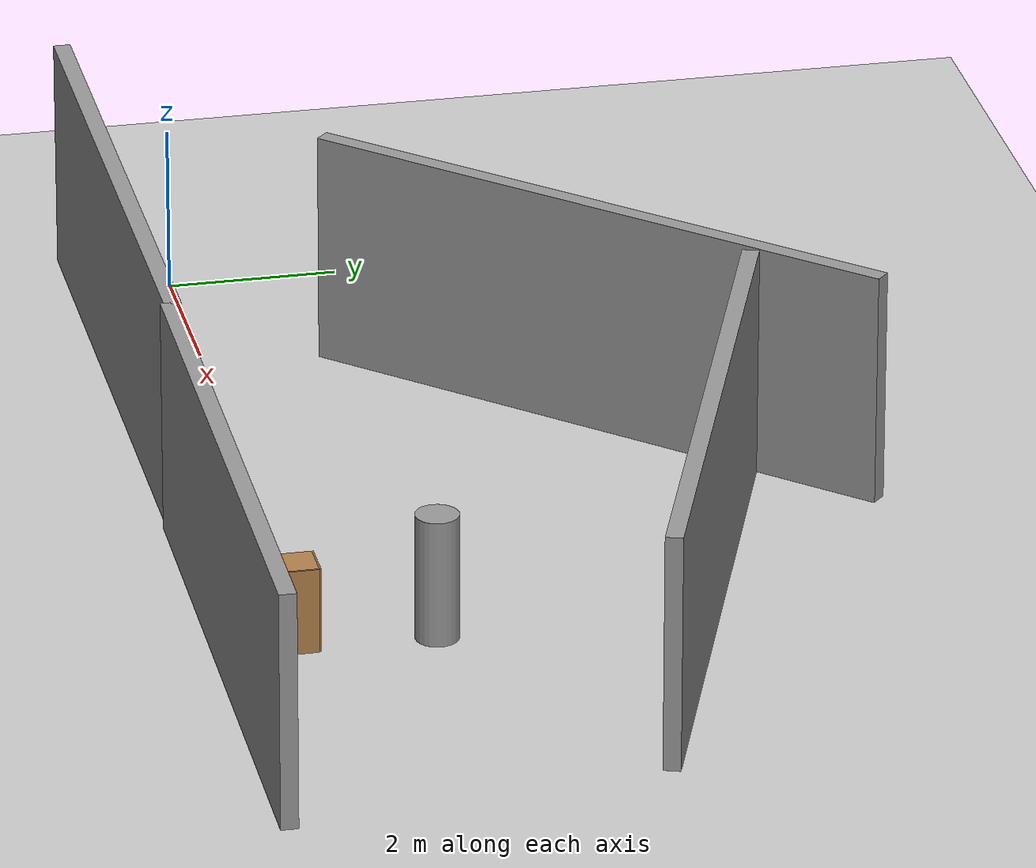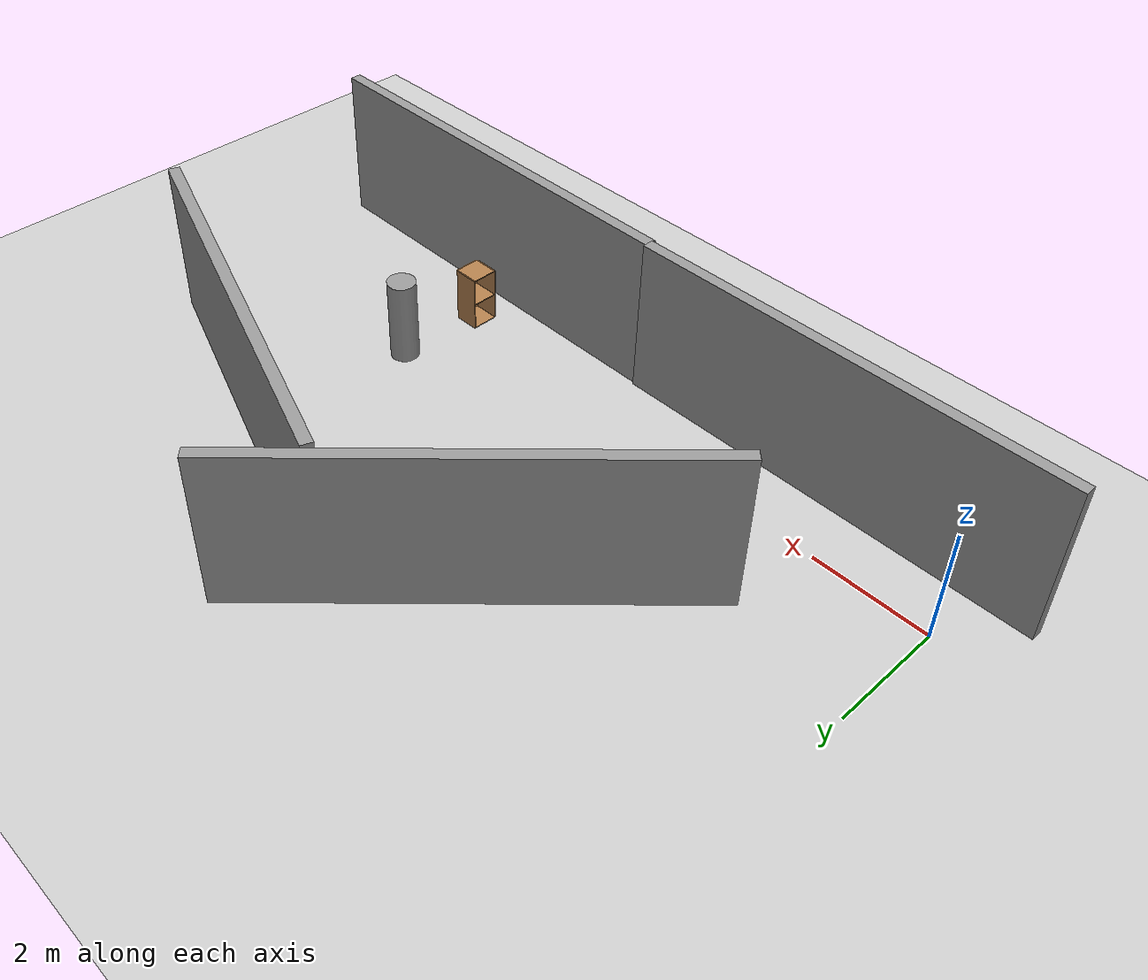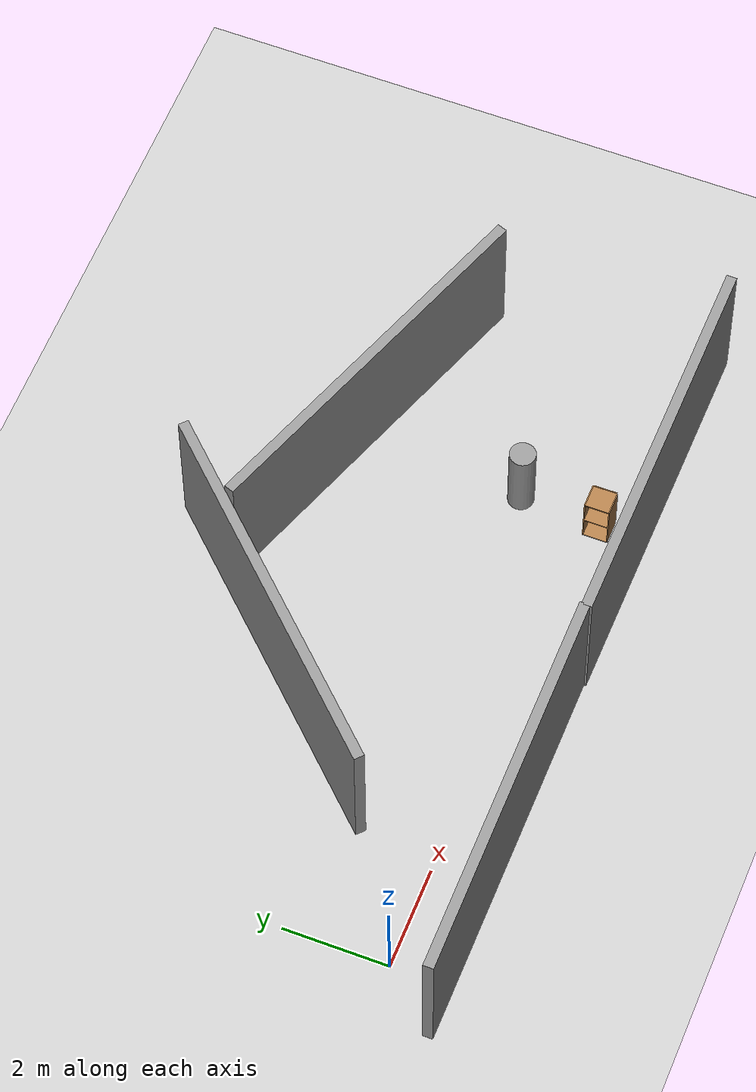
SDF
<sdf version="1.6">
 <world name="default">
  <light name="sun" type="directional">
   <pose>0 0 10 0 -0 0</pose>
   <diffuse>0.8 0.8 0.8 1</diffuse>
   <specular>0.2 0.2 0.2 1</specular>
   <attenuation>
    <range>1000</range>
    <constant>0.9</constant>
    <linear>0.01</linear>
    <quadratic>0.001</quadratic>
   </attenuation>
   <direction>-0.5 0.1 -0.9</direction>
  </light>
  <model name="ground_plane">
   <static>1</static>
   <link name="link">
    <collision name="collision">
     <geometry><plane><normal>0 0 1</normal><size>100 100</size></plane></geometry>
     <surface>
      <contact><collide_bitmask>65535</collide_bitmask></contact>
      <friction><ode><mu>100</mu><mu2>50</mu2></ode></friction>
     </surface>
    </collision>
    <visual name="visual">
     <cast_shadows>0</cast_shadows>
     <geometry><plane><normal>0 0 1</normal><size>100 100</size></plane></geometry>
     <material>
      <script><uri>file://media/materials/scripts/gazebo.material</uri><name>Gazebo/Grey</name></script>
     </material>
    </visual>
   </link>
  </model>
  <gravity>0 0 -9.8</gravity>
  <magnetic_field>6e-06 2.3e-05 -4.2e-05</magnetic_field>
  <atmosphere type="adiabatic"/>
  <physics name="default_physics" default="0" type="ode">
   <max_step_size>0.001</max_step_size>
   <real_time_factor>1</real_time_factor>
   <real_time_update_rate>1000</real_time_update_rate>
  </physics>
  <scene><ambient>0.4 0.4 0.4 1</ambient><background>0.7 0.7 0.7 1</background><shadows>1</shadows></scene>
  <spherical_coordinates>
   <surface_model>EARTH_WGS84</surface_model>
   <latitude_deg>0</latitude_deg>
   <longitude_deg>0</longitude_deg>
   <elevation>0</elevation>
   <heading_deg>0</heading_deg>
  </spherical_coordinates>
  <model name="grey_wall">
   <static>1</static>
   <link name="link">
    <pose>0 0 1.4 0 -0 0</pose>
    <collision name="collision"><geometry><box><size>7.5 0.2 2.8</size></box></geometry></collision>
    <visual name="visual">
     <cast_shadows>0</cast_shadows>
     <geometry><box><size>7.5 0.2 2.8</size></box></geometry>
     <material>
      <script>
       <uri>model://grey_wall/materials/scripts</uri>
       <uri>model://grey_wall/materials/textures</uri>
       <name>vrc/grey_wall</name>
      </script>
     </material>
    </visual>
   </link>
   <pose>2.75291 -1.08985 0 0 -0 0</pose>
  </model>
  <model name="grey_wall_clone">
   <static>1</static>
   <link name="link">
    <pose>0 0 1.4 0 -0 0</pose>
    <collision name="collision"><geometry><box><size>7.5 0.2 2.8</size></box></geometry></collision>
    <visual name="visual">
     <cast_shadows>0</cast_shadows>
     <geometry><box><size>7.5 0.2 2.8</size></box></geometry>
     <material>
      <script>
       <uri>model://grey_wall/materials/scripts</uri>
       <uri>model://grey_wall/materials/textures</uri>
       <name>vrc/grey_wall</name>
      </script>
     </material>
    </visual>
   </link>
   <pose>10.2216 -1.15909 0 0 -0 3.13344</pose>
  </model>
  <model name="cabinet">
   <static>1</static>
   <link name="cabinet_bottom_plate">
    <inertial>
     <pose>0 0 -1 0 -0 0</pose>
     <inertia><ixx>2.05</ixx><ixy>0</ixy><ixz>0</ixz><iyy>2.05</iyy><iyz>0</iyz><izz>2.05</izz></inertia>
     <mass>25</mass>
    </inertial>
    <collision name="cabinet_bottom_plate_geom">
     <pose>0 0 0.01 0 -0 0</pose>
     <geometry><box><size>0.45 0.45 0.02</size></box></geometry>
    </collision>
    <visual name="cabinet_bottom_plate_geom_visual">
     <pose>0 0 0.01 0 -0 0</pose>
     <geometry><box><size>0.45 0.45 0.02</size></box></geometry>
     <material>
      <script><uri>file://media/materials/scripts/gazebo.material</uri><name>Gazebo/Wood</name></script>
     </material>
    </visual>
    <collision name="cabinet_bottom_plate_geom_cabinet_back_plate">
     <pose>0.235 0 0.51 0 -0 0</pose>
     <geometry><box><size>0.02 0.45 1.02</size></box></geometry>
    </collision>
    <visual name="cabinet_bottom_plate_geom_cabinet_back_plate_visual">
     <pose>0.235 0 0.51 0 -0 0</pose>
     <geometry><box><size>0.02 0.45 1.02</size></box></geometry>
     <material>
      <script><uri>file://media/materials/scripts/gazebo.material</uri><name>Gazebo/Wood</name></script>
     </material>
    </visual>
    <collision name="cabinet_bottom_plate_geom_cabinet_left_plate">
     <pose>0 0.235 0.51 0 -0 0</pose>
     <geometry><box><size>0.45 0.02 1.02</size></box></geometry>
    </collision>
    <visual name="cabinet_bottom_plate_geom_cabinet_left_plate_visual">
     <pose>0 0.235 0.51 0 -0 0</pose>
     <geometry><box><size>0.45 0.02 1.02</size></box></geometry>
     <material>
      <script><uri>file://media/materials/scripts/gazebo.material</uri><name>Gazebo/Wood</name></script>
     </material>
    </visual>
    <collision name="cabinet_bottom_plate_geom_cabinet_middle_plate">
     <pose>0 0 0.51 0 -0 0</pose>
     <geometry><box><size>0.45 0.45 0.02</size></box></geometry>
    </collision>
    <visual name="cabinet_bottom_plate_geom_cabinet_middle_plate_visual">
     <pose>0 0 0.51 0 -0 0</pose>
     <geometry><box><size>0.45 0.45 0.02</size></box></geometry>
     <material>
      <script><uri>file://media/materials/scripts/gazebo.material</uri><name>Gazebo/Wood</name></script>
     </material>
    </visual>
    <collision name="cabinet_bottom_plate_geom_cabinet_right_plate">
     <pose>0 -0.235 0.51 0 -0 0</pose>
     <geometry><box><size>0.45 0.02 1.02</size></box></geometry>
    </collision>
    <visual name="cabinet_bottom_plate_geom_cabinet_right_plate_visual">
     <pose>0 -0.235 0.51 0 -0 0</pose>
     <geometry><box><size>0.45 0.02 1.02</size></box></geometry>
     <material>
      <script><uri>file://media/materials/scripts/gazebo.material</uri><name>Gazebo/Wood</name></script>
     </material>
    </visual>
    <collision name="cabinet_bottom_plate_geom_cabinet_top_plate">
     <pose>0 0 1.01 0 -0 0</pose>
     <geometry><box><size>0.45 0.45 0.02</size></box></geometry>
    </collision>
    <visual name="cabinet_bottom_plate_geom_cabinet_top_plate_visual">
     <pose>0 0 1.01 0 -0 0</pose>
     <geometry><box><size>0.45 0.45 0.02</size></box></geometry>
     <material>
      <script><uri>file://media/materials/scripts/gazebo.material</uri><name>Gazebo/Wood</name></script>
     </material>
    </visual>
   </link>
   <pose>9.66224 -0.303006 0 0 -0 0</pose>
  </model>
  <model name="grey_wall_clone_clone">
   <static>1</static>
   <link name="link">
    <pose>0 0 1.4 0 -0 0</pose>
    <collision name="collision"><geometry><box><size>7.5 0.2 2.8</size></box></geometry></collision>
    <visual name="visual">
     <cast_shadows>0</cast_shadows>
     <geometry><box><size>7.5 0.2 2.8</size></box></geometry>
     <material>
      <script>
       <uri>model://grey_wall/materials/scripts</uri>
       <uri>model://grey_wall/materials/textures</uri>
       <name>vrc/grey_wall</name>
      </script>
     </material>
    </visual>
   </link>
   <pose>4.81061 4.16217 0 0 0 -2.32748</pose>
  </model>
  <model name="grey_wall_clone_clone_clone">
   <static>1</static>
   <link name="link">
    <pose>0 0 1.4 0 -0 0</pose>
    <collision name="collision"><geometry><box><size>7.5 0.2 2.8</size></box></geometry></collision>
    <visual name="visual">
     <cast_shadows>0</cast_shadows>
     <geometry><box><size>7.5 0.2 2.8</size></box></geometry>
     <material>
      <script>
       <uri>model://grey_wall/materials/scripts</uri>
       <uri>model://grey_wall/materials/textures</uri>
       <name>vrc/grey_wall</name>
      </script>
     </material>
    </visual>
   </link>
   <pose>9.92958 4.34401 0 0 0 -0.338084</pose>
  </model>
  <model name="unit_cylinder">
   <link name="link">
    <inertial>
     <mass>1</mass>
     <inertia><ixx>0.145833</ixx><ixy>0</ixy><ixz>0</ixz><iyy>0.145833</iyy><iyz>0</iyz><izz>0.125</izz></inertia>
    </inertial>
    <visual name="visual">
     <geometry><cylinder><radius>0.25</radius><length>2</length></cylinder></geometry>
     <material>
      <script><name>Gazebo/Grey</name><uri>file://media/materials/scripts/gazebo.material</uri></script>
      <shader type="pixel"><normal_map>__default__</normal_map></shader>
      <ambient>0.3 0.3 0.3 1</ambient>
      <diffuse>0.7 0.7 0.7 1</diffuse>
      <specular>0.01 0.01 0.01 1</specular>
      <emissive>0 0 0 1</emissive>
     </material>
    </visual>
    <collision name="collision">
     <geometry><cylinder><radius>0.25</radius><length>2</length></cylinder></geometry>
     <surface>
      <friction>
       <ode><mu>1</mu><mu2>1</mu2><fdir1>0 0 0</fdir1><slip1>0</slip1><slip2>0</slip2></ode>
       <torsional>
        <coefficient>1</coefficient>
        <patch_radius>0</patch_radius>
        <surface_radius>0</surface_radius>
        <use_patch_radius>1</use_patch_radius>
        <ode><slip>0</slip></ode>
       </torsional>
      </friction>
      <bounce><restitution_coefficient>0</restitution_coefficient><threshold>1e+06</threshold></bounce>
      <contact>
       <collide_without_contact>0</collide_without_contact>
       <collide_without_contact_bitmask>1</collide_without_contact_bitmask>
       <collide_bitmask>1</collide_bitmask>
       <ode>
        <soft_cfm>0</soft_cfm>
        <soft_erp>0.2</soft_erp>
        <kp>1e+13</kp>
        <kd>1</kd>
        <max_vel>0.01</max_vel>
        <min_depth>0</min_depth>
       </ode>
       <bullet>
        <split_impulse>1</split_impulse>
        <split_impulse_penetration_threshold>-0.01</split_impulse_penetration_threshold>
        <soft_cfm>0</soft_cfm>
        <soft_erp>0.2</soft_erp>
        <kp>1e+13</kp>
        <kd>1</kd>
       </bullet>
      </contact>
     </surface>
    </collision>
   </link>
   <static>0</static>
   <pose>9.76899 1.26999 0.5 0 -0 0</pose>
  </model>
 </world>
</sdf>
